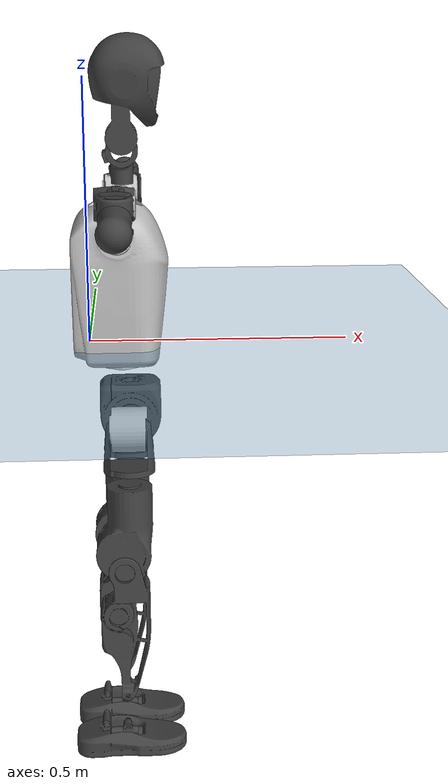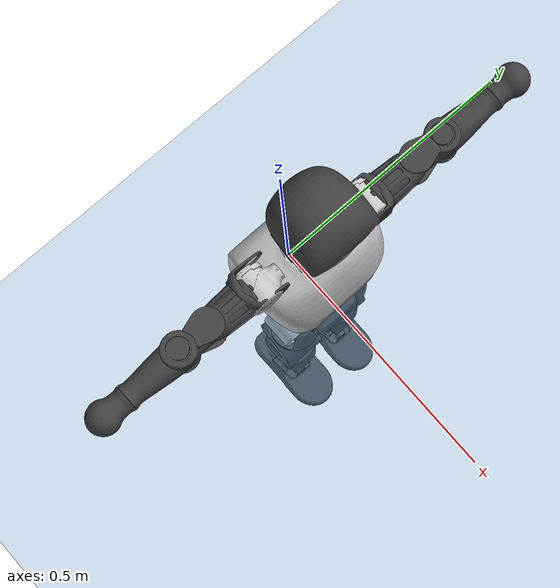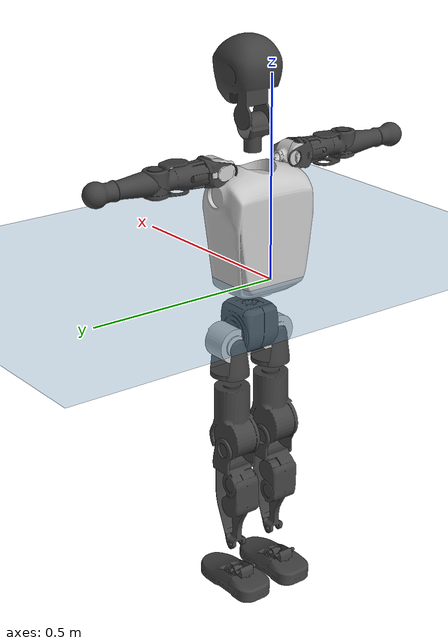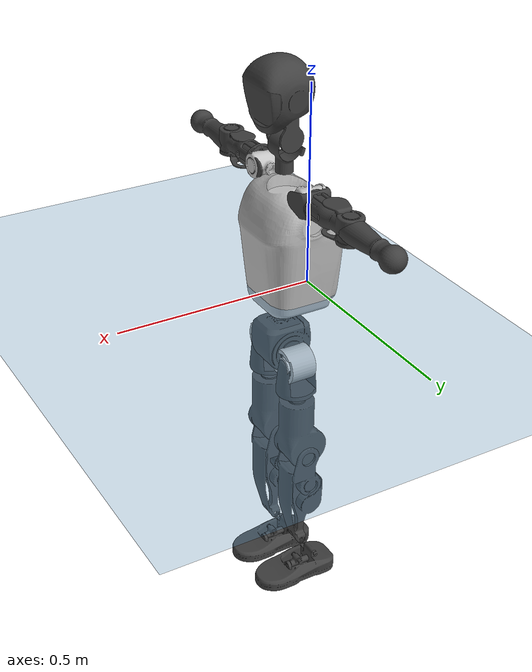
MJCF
<mujoco model="T1">
  <compiler angle="radian" assetdir="assets" balanceinertia="true" inertiafromgeom="false"/>

  <option timestep="0.005" density="1.2" viscosity="2e-05"/>

  <size nkey="1"/>

  <visual>
    <quality shadowsize="8192"/>
    <map shadowclip="0.5"/>
  </visual>

  <default>
    <default class="/">
      <joint armature="0.01" damping="0.01" frictionloss="0.1"/>
      <geom contype="0" conaffinity="0" group="1" solref="-1000 -80"/>
      <site size="0.01 0.005 0.005" group="5"/>
      <general forcelimited="true" biastype="affine" gainprm="25" biasprm="0 -25 -0.6"/>
      <default class="t1">
        <geom rgba="0.25 0.25 0.25 1"/>
        <default class="visual">
          <geom type="mesh" group="2"/>
        </default>
        <default class="collision">
          <geom group="3"/>
        </default>
        <default class="foot">
          <geom size="0.1115 0.05 0.015" type="box" condim="6" group="4" priority="1" solimp="0.015 1 0.015"/>
        </default>
        <default class="reward_collision_sphere">
          <geom group="5" rgba="1 0 0 1"/>
        </default>
      </default>
    </default>
  </default>

  <asset>
    <texture type="skybox" colorspace="auto" name="//unnamed_texture_0" builtin="gradient" rgb1="0.95 0.95 0.95" rgb2="0.95 0.95 0.95" width="100" height="600"/>
    <texture type="2d" colorspace="auto" name="texplane" builtin="checker" rgb1="0.345 0.575 0.748" rgb2="0.345 0.575 0.748" markrgb="1 1 1" width="512" height="512"/>
    <material name="MatPlane" class="/" texture="texplane" texuniform="true" texrepeat="2 2" specular="0.9"/>
    <mesh name="Trunk" class="/" file="Trunk.stl"/>
    <mesh name="H1" class="/" file="H1.stl"/>
    <mesh name="H2" class="/" file="H2.stl"/>
    <mesh name="AL1" class="/" file="AL1.stl"/>
    <mesh name="AL2" class="/" file="AL2.stl"/>
    <mesh name="AL3" class="/" file="AL3.stl"/>
    <mesh name="left_hand_link" class="/" file="left_hand_link.stl"/>
    <mesh name="AR1" class="/" file="AR1.stl"/>
    <mesh name="AR2" class="/" file="AR2.stl"/>
    <mesh name="AR3" class="/" file="AR3.stl"/>
    <mesh name="right_hand_link" class="/" file="right_hand_link.stl"/>
    <mesh name="Waist" class="/" file="Waist.stl"/>
    <mesh name="Hip_Pitch_Left" class="/" file="Hip_Pitch_Left.stl"/>
    <mesh name="Hip_Roll_Left" class="/" file="Hip_Roll_Left.stl"/>
    <mesh name="Hip_Yaw_Left" class="/" file="Hip_Yaw_Left.stl"/>
    <mesh name="Shank_Left" class="/" file="Shank_Left.stl"/>
    <mesh name="Ankle_Cross_Left" class="/" file="Ankle_Cross_Left.stl"/>
    <mesh name="left_foot_link" class="/" file="left_foot_link.stl"/>
    <mesh name="Hip_Pitch_Right" class="/" file="Hip_Pitch_Right.stl"/>
    <mesh name="Hip_Roll_Right" class="/" file="Hip_Roll_Right.stl"/>
    <mesh name="Hip_Yaw_Right" class="/" file="Hip_Yaw_Right.stl"/>
    <mesh name="Shank_Right" class="/" file="Shank_Right.stl"/>
    <mesh name="Ankle_Cross_Right" class="/" file="Ankle_Cross_Right.stl"/>
    <mesh name="right_foot_link" class="/" file="right_foot_link.stl"/>
  </asset>

  <worldbody>
    <geom name="floor" class="/" size="100 100 0.125" type="plane" group="0" material="MatPlane"/>
    <light name="toplight_shadow" class="/" pos="0 0 5" dir="0.0990148 0.0990148 -0.990148" type="directional" ambient="0.04 0.04 0.04" diffuse="0.55 0.55 0.55" specular="0.12 0.12 0.12"/>
    <light name="toplight_fill" class="/" pos="0 0 5" dir="0.0990148 0.0990148 -0.990148" type="directional" castshadow="false" ambient="0.04 0.04 0.04" diffuse="0.3 0.3 0.3" specular="0.08 0.08 0.08"/>
    <body name="trunk" childclass="t1" pos="-4.20182e-05 0.00232229 -0.0026524" quat="1 -7.28371e-05 0.000332223 0.000160708">
      <inertial pos="0.0568207 0.00104269 0.134842" quat="0.999924 0.00223154 -0.0117218 -0.00320209" mass="11.2619" diaginertia="0.143419 0.00586326 0.173703"/>
      <joint name="//unnamed_joint_0" type="free" armature="0" damping="0" frictionloss="0"/>
      <geom name="//unnamed_geom_1" class="visual" rgba="0.76 0.76 0.76 1" mesh="Trunk"/>
      <geom name="//unnamed_geom_2" class="collision" size="0.0740782 0.098771 0.148156" pos="0.0659278 0 0.151774" type="box"/>
      <geom name="//unnamed_geom_3" class="reward_collision_sphere" size="0.113587" pos="0.0659278 0 0.126479"/>
      <geom name="//unnamed_geom_4" class="reward_collision_sphere" size="0.0148156" pos="0.0659278 0.0509614 0"/>
      <geom name="//unnamed_geom_5" class="reward_collision_sphere" size="0.0148156" pos="0.0659278 -0.0509614 0"/>
      <geom name="//unnamed_geom_6" class="reward_collision_sphere" size="0.0148156" pos="0.0659278 0.0641514 0.227662"/>
      <geom name="//unnamed_geom_7" class="reward_collision_sphere" size="0.0148156" pos="0.0659278 -0.0641514 0.227662"/>
      <site name="imu" pos="-0.000378053 -0.020693 -0.00441506" size="0.0098771"/>
      <camera name="track" pos="0 -1.19909 0" quat="0.707107 0.707107 0 0" mode="trackcom"/>
      <camera name="ego_camera" pos="0.134053 0 0.53121" quat="-0.5 -0.5 0.5 0.5"/>
      <body name="H1" pos="0.0689009 0.000223708 0.305797" quat="0.999998 0.00160025 0.00104929 -0.000338556">
        <inertial pos="-0.00134842 -0.00417261 0.0733851" quat="0.764803 -0.0119054 0.0092658 0.644088" mass="0.441837" diaginertia="0.000379175 1.69638e-05 0.000463215"/>
        <joint name="AAHead_yaw" pos="0 0 0" axis="-0.00582889 0.00465553 0.999972" range="-1.55241 1.45385" armature="0.00918825" damping="0.0147245" frictionloss="0.104862"/>
        <geom name="//unnamed_geom_8" class="visual" mesh="H1"/>
        <body name="H2" pos="-0.000270339 0.0013456 0.0855099" quat="0.999994 0.00140243 -3.25204e-05 0.00314506">
          <inertial pos="0.00749652 -0.00114477 0.122142" quat="0.988602 0.106047 -0.0693433 -0.0813112" mass="0.607751" diaginertia="0.00323467 0.000142924 0.00581107"/>
          <joint name="Head_pitch" pos="0 0 0" axis="-0.00676172 -0.999923 0.0104384" stiffness="0.00433218" range="-1.17754 0.357991" armature="0.0103576" damping="0.00853566" frictionloss="0.102956"/>
          <geom name="//unnamed_geom_9" class="visual" mesh="H2"/>
          <geom name="//unnamed_geom_10" class="collision" size="0.0790168" pos="0.010988 0 0.139127"/>
          <geom name="//unnamed_geom_11" class="reward_collision_sphere" size="0.0888939" pos="0.0219759 0 0.126479"/>
        </body>
      </body>
      <body name="AL1" pos="0.06587 0.0645746 0.278617" quat="0.999999 -0.000205246 0.00127885 -4.91674e-06">
        <inertial pos="0.000702027 0.0275503 0.000163298" quat="0.523426 0.494736 -0.495948 0.485074" mass="0.538235" diaginertia="0.00224739 0.000103643 0.000957296"/>
        <joint name="Left_Shoulder_Pitch" pos="0 0 0" axis="0.00164289 0.999998 -0.000877775" stiffness="0.00103907" range="-3.41434 1.20953" armature="0.0108712" damping="0.00849698" frictionloss="0.0966807"/>
        <geom name="//unnamed_geom_12" class="visual" rgba="0.76 0.76 0.76 1" mesh="AL1"/>
        <body name="AL2" pos="0.00234627 0.0285963 -0.000452464" quat="0.999997 -0.00108632 -0.0020793 -7.99601e-05">
          <inertial pos="-0.002054 0.0223866 0.000199455" quat="0.486485 0.512725 -0.488052 0.512104" mass="0.1606" diaginertia="0.000673781 2.75417e-05 0.000621311"/>
          <joint name="Left_Shoulder_Roll" pos="0 0 0" axis="-0.999931 0.0116912 0.00147663" range="-1.56783 1.69552" armature="0.00921558" damping="0" frictionloss="0.0875639"/>
          <geom name="//unnamed_geom_13" class="visual" mesh="AL2"/>
          <body name="AL3" pos="0.00175612 0.0355603 -0.000311038" quat="0.999998 0.000321275 -0.00109933 -0.00177749">
            <inertial pos="-0.00531532 0.0534356 -0.000134723" quat="0.716613 0.69684 -0.0182105 0.0233976" mass="0.906493" diaginertia="0.0184942 0.000830649 0.001884"/>
            <joint name="Left_Elbow_Pitch" pos="0 0 0" axis="0.00108214 -0.999945 -0.0104581" range="-2.3058 2.14792" armature="0.00822628" damping="0.0101185" frictionloss="0.0686734"/>
            <geom name="//unnamed_geom_14" class="visual" mesh="AL3"/>
            <geom name="//unnamed_geom_15" class="collision" size="0.0296313 0.0740782" pos="0 0.0299773 0" quat="0.707105 0.707108 0 0" type="cylinder"/>
            <geom name="//unnamed_geom_16" class="reward_collision_sphere" size="0.0355576"/>
            <body name="left_hand_link" pos="0.00123632 0.0890521 0.00270448" quat="0.999996 -0.00290159 -0.000312212 -9.88965e-05">
              <inertial pos="-0.00250899 0.0634807 0.00208829" quat="0.70531 0.708831 -0.00338734 0.00921735" mass="0.313008" diaginertia="0.0120711 0.000602309 0.000724127"/>
              <joint name="Left_Elbow_Yaw" pos="0 0 0" axis="0.00312749 0.0182626 0.999828" stiffness="0.00295939" range="-2.44075 -0.119499" armature="0.0113553" damping="0.0251915" frictionloss="0.0979129"/>
              <geom name="//unnamed_geom_17" class="visual" mesh="left_hand_link"/>
              <geom name="//unnamed_geom_18" class="collision" size="0.0296313 0.0864246" pos="0 0.077941 0" quat="0.707105 0.707108 0 0" type="cylinder"/>
              <geom name="//unnamed_geom_19" class="reward_collision_sphere" size="0.0493855"/>
              <geom name="//unnamed_geom_20" class="reward_collision_sphere" size="0.0345698" pos="0 0.06595 0"/>
              <geom name="//unnamed_geom_21" class="reward_collision_sphere" size="0.0345698" pos="0 0.128902 0"/>
            </body>
          </body>
        </body>
      </body>
      <body name="AR1" pos="0.0605095 -0.0664592 0.281746" quat="1 -3.69056e-05 0.000196822 4.81036e-05">
        <inertial pos="-0.00168665 -0.0231135 0.00104813" quat="0.500416 0.492823 -0.503148 0.503539" mass="0.507193" diaginertia="0.00216133 0.000100122 0.00093365"/>
        <joint name="Right_Shoulder_Pitch" pos="0 0 0" axis="0.0301808 -0.999493 0.0101255" range="-1.22928 3.20732" armature="0.00880971" damping="0.00845346" frictionloss="0.12599"/>
        <geom name="//unnamed_geom_22" class="visual" rgba="0.76 0.76 0.76 1" mesh="AR1"/>
        <body name="AR2" pos="-0.00661113 -0.0232029 0.00183341" quat="1 1.08383e-05 1.65172e-05 9.96504e-06">
          <inertial pos="0.00174999 -0.0233622 0.00335009" quat="0.516686 0.487975 -0.506245 0.488501" mass="0.134983" diaginertia="0.000604311 2.51009e-05 0.000523985"/>
          <joint name="Right_Shoulder_Roll" pos="0 0 0" axis="-0.999849 0.0128708 0.0116755" stiffness="0.0150032" range="-1.73822 1.52294" armature="0.00870565" damping="0.0203126" frictionloss="0.0824918"/>
          <geom name="//unnamed_geom_23" class="visual" mesh="AR2"/>
          <body name="AR3" pos="0.0038801 -0.0341258 -0.000373912" quat="1 -0.000106852 0.000138934 1.97863e-05">
            <inertial pos="0.000282037 -0.0540592 0.00207637" quat="0.708343 0.705864 0.00214885 -0.00140676" mass="0.861028" diaginertia="0.0187772 0.000908999 0.00183648"/>
            <joint name="Right_Elbow_Pitch" pos="0 0 0" axis="-0.00613167 0.999969 -0.00484438" stiffness="0.0358872" range="-2.21265 2.34504" armature="0.00899326" damping="0" frictionloss="0.102083"/>
            <geom name="//unnamed_geom_24" class="visual" mesh="AR3"/>
            <geom name="//unnamed_geom_25" class="collision" size="0.0296313 0.0740782" pos="0 -0.0299773 0" quat="0.707105 0.707108 0 0" type="cylinder"/>
            <geom name="//unnamed_geom_26" class="reward_collision_sphere" size="0.0355576"/>
            <body name="right_hand_link" pos="-0.000816421 -0.0880067 -0.00526258" quat="1 4.71184e-07 6.22578e-05 0.000138235">
              <inertial pos="-0.00248791 -0.0654783 0.00656247" quat="0.707209 0.706973 -0.00468953 0.00478218" mass="0.345135" diaginertia="0.0136705 0.000621466 0.000712134"/>
              <joint name="Right_Elbow_Yaw" pos="0 0 0" axis="-0.0078729 -0.0056099 0.999953" range="0.0216748 2.35967" armature="0.00880236" damping="0.00364477" frictionloss="0.0885156"/>
              <geom name="//unnamed_geom_27" class="visual" mesh="right_hand_link"/>
              <geom name="//unnamed_geom_28" class="collision" size="0.0296313 0.0864246" pos="0 -0.077941 0" quat="0.707105 0.707108 0 0" type="cylinder"/>
              <geom name="//unnamed_geom_29" class="reward_collision_sphere" size="0.0493855"/>
              <geom name="//unnamed_geom_30" class="reward_collision_sphere" size="0.0345698" pos="0 -0.06595 0"/>
              <geom name="//unnamed_geom_31" class="reward_collision_sphere" size="0.0345698" pos="0 -0.128902 0"/>
            </body>
          </body>
        </body>
      </body>
      <body name="Waist" pos="0.0761001 0.00369229 -0.14373" quat="0.999999 -0.000745947 -0.00010735 0.00108201">
        <inertial pos="0.00560859 0.00272831 0.0118759" quat="0.983541 0.00060935 -0.180668 0.00233896" mass="2.61443" diaginertia="0.00907406 0.000445623 0.0164305"/>
        <joint name="Waist" pos="0 0 0" axis="0.00608391 0.00107136 0.999981" range="-1.58242 1.55705" armature="0.0107641" damping="0.00317658" frictionloss="0.125023"/>
        <geom name="//unnamed_geom_32" class="visual" mesh="Waist"/>
        <body name="Hip_Pitch_Left" pos="0.00136803 0.068416 -0.00318871" quat="0.999999 -0.000334191 0.00110554 -0.00110773">
          <inertial pos="0.00254887 -0.00682134 -0.0221076" quat="0.97516 0.221001 0.0147338 0.00187103" mass="0.98774" diaginertia="0.00280496 0.000104262 0.00403538"/>
          <joint name="Left_Hip_Pitch" pos="0 0 0" axis="-0.0104098 0.999912 -0.00827039" stiffness="0.0255989" range="-1.85393 1.60363" armature="0.00895768" damping="0.0188573" frictionloss="0.103871"/>
          <geom name="//unnamed_geom_33" class="visual" rgba="0.76 0.76 0.76 1" mesh="Hip_Pitch_Left"/>
          <body name="Hip_Roll_Left" pos="-0.00443488 -0.00277075 -0.0262212" quat="0.999994 -0.00254973 -0.00149641 0.0017042">
            <inertial pos="0.00607365 0.0032018 -0.0660209" quat="0.727103 0.00295184 -0.0166472 0.68632" mass="0.389718" diaginertia="0.00300446 0.0001245 0.00168051"/>
            <joint name="Left_Hip_Roll" pos="0 0 0" axis="-0.999423 0.0155125 0.030206" range="-1.52056 0.104421" armature="0.00782438" damping="0.0196638" frictionloss="0.0890099"/>
            <geom name="//unnamed_geom_34" class="visual" mesh="Hip_Roll_Left"/>
            <geom name="//unnamed_geom_35" class="reward_collision_sphere" size="0.054324"/>
            <body name="Hip_Yaw_Left" pos="-0.00726329 -0.00225863 -0.107471" quat="0.999997 0.00145769 -0.00215898 0.000123522">
              <inertial pos="-0.00528805 -0.00321492 -0.112706" quat="0.693305 -0.0432764 -0.0260866 0.71887" mass="1.99093" diaginertia="0.0410726 0.00190558 0.00789288"/>
              <joint name="Left_Hip_Yaw" pos="0 0 0" axis="-8.09852e-05 -2.13742e-05 -1" range="-0.967069 1.11459" armature="0.0109499" damping="0" frictionloss="0.0996317"/>
              <geom name="//unnamed_geom_36" class="visual" mesh="Hip_Yaw_Left"/>
              <geom name="//unnamed_geom_37" class="collision" size="0.0493855 0.0790168" type="cylinder"/>
              <body name="Shank_Left" pos="-0.014254 -0.00105197 -0.163745" quat="1 -0.000434121 0.000824242 0.000132852">
                <inertial pos="-0.00997694 0.00423082 -0.155521" quat="0.99707 -0.0030056 -0.0341048 0.0684011" mass="1.70637" diaginertia="0.0559239 0.00280232 0.00635264"/>
                <joint name="Left_Knee_Pitch" pos="0 0 0" axis="-0.00219995 0.999917 0.0126585" range="-0.0115993 2.35246" armature="0.0101167" damping="0.00463232" frictionloss="0.109792"/>
                <geom name="//unnamed_geom_38" class="visual" mesh="Shank_Left"/>
                <geom name="//unnamed_geom_39" class="collision" size="0.0493855 0.0740782" pos="0 0 -0.151774" type="cylinder"/>
                <geom name="//unnamed_geom_40" class="reward_collision_sphere" size="0.0642011"/>
                <body name="Ankle_Cross_Left" pos="0.00121582 0.00186499 -0.359682" quat="1 -0.000107717 0.000108462 5.79291e-05">
                  <inertial pos="-0.00628577 0.00163701 -0.00983498" quat="0.445475 0.550564 0.550936 0.441476" mass="0.0651625" diaginertia="4.57982e-05 1.93625e-06 3.60722e-05"/>
                  <joint name="Left_Ankle_Pitch" pos="0 0 0" axis="-0.000662968 0.999999 0.00159698" range="-0.90455 0.379603" armature="0.010584" damping="0.00768396" frictionloss="0.109236"/>
                  <geom name="//unnamed_geom_41" class="visual" mesh="Ankle_Cross_Left"/>
                  <body name="left_foot_link" pos="0.000726237 -0.000255847 -0.0138636" quat="1 0.000782881 -0.000416799 -0.000370484">
                    <inertial pos="0.000959909 -0.00308941 -0.0121234" quat="-0.000889019 0.615665 -0.000643488 0.788007" mass="0.717019" diaginertia="0.00403435 0.000187925 0.00726197"/>
                    <joint name="Left_Ankle_Roll" pos="0 0 0" axis="-0.999989 -0.00440942 -0.00179502" stiffness="0.000825495" range="-0.471585 0.333653" armature="0.00703" damping="0.00979676" frictionloss="0.105254"/>
                    <geom name="//unnamed_geom_42" class="visual" mesh="left_foot_link"/>
                    <geom name="left_foot" class="foot" size="0.096744 0.0555373 0.0139328" pos="0.010988 0 -0.0189718"/>
                    <geom name="//unnamed_geom_44" class="reward_collision_sphere" size="0.0513609" pos="0.010988 0 -0.0189718"/>
                    <geom name="//unnamed_geom_45" class="reward_collision_sphere" size="0.0296313" pos="0.104386 -0.0137896 -0.0189718"/>
                    <geom name="//unnamed_geom_46" class="reward_collision_sphere" size="0.0296313" pos="-0.0769158 -0.0137896 -0.0189718"/>
                    <site name="left_foot" class="foot" pos="0.010988 0 -0.0189718" size="0.0098771"/>
                  </body>
                </body>
              </body>
            </body>
          </body>
        </body>
        <body name="Hip_Pitch_Right" pos="-0.00368387 -0.0631771 0.00289859" quat="0.999999 -0.00145885 0.000356794 0.000521471">
          <inertial pos="0.00482816 0.00640376 -0.0229662" quat="0.97323 -0.22944 0.0131977 -0.00239897" mass="0.971054" diaginertia="0.00288271 0.000114067 0.00402816"/>
          <joint name="Right_Hip_Pitch" pos="0 0 0" axis="0.00185217 -0.99995 -0.00978498" range="-1.52524 1.81157" armature="0.00639946" damping="0.0073045" frictionloss="0.0984452"/>
          <geom name="//unnamed_geom_47" class="visual" rgba="0.76 0.76 0.76 1" mesh="Hip_Pitch_Right"/>
          <body name="Hip_Roll_Right" pos="0.00128138 0.000724831 -0.0285061" quat="0.999999 -0.000583816 -0.00097808 -0.000809306">
            <inertial pos="0.0019981 0.00537528 -0.0654848" quat="0.712312 0.00058788 -0.0262374 0.701372" mass="0.415674" diaginertia="0.00312738 0.00012981 0.00181625"/>
            <joint name="Right_Hip_Roll" pos="0 0 0" axis="-0.999817 -0.0190145 -0.00219044" range="-0.241635 1.58072" armature="0.00971224" damping="0.017889" frictionloss="0.112564"/>
            <geom name="//unnamed_geom_48" class="visual" mesh="Hip_Roll_Right"/>
            <geom name="//unnamed_geom_49" class="reward_collision_sphere" size="0.054324"/>
            <body name="Hip_Yaw_Right" pos="-0.00321672 -0.000626825 -0.107029" quat="0.999999 8.41537e-05 0.000653869 0.00103515">
              <inertial pos="-0.00822949 0.00667952 -0.112454" quat="0.714593 -0.030559 -0.027734 0.698323" mass="2.2562" diaginertia="0.04517 0.00215112 0.00891449"/>
              <joint name="Right_Hip_Yaw" pos="0 0 0" axis="0.00054233 0.00330805 -0.999994" range="-0.99546 0.93259" armature="0.00885183" damping="0.01391" frictionloss="0.10027"/>
              <geom name="//unnamed_geom_50" class="visual" mesh="Hip_Yaw_Right"/>
              <geom name="//unnamed_geom_51" class="collision" size="0.0493855 0.0790168" type="cylinder"/>
              <body name="Shank_Right" pos="-0.0127601 -0.000274453 -0.168844" quat="1 -0.000603979 -0.000513211 9.64832e-05">
                <inertial pos="-0.00700565 0.000707923 -0.155729" quat="0.999532 -0.00429606 -0.0229268 -0.0197855" mass="1.77528" diaginertia="0.0639373 0.00277363 0.0065936"/>
                <joint name="Right_Knee_Pitch" pos="0 0 0" axis="-0.0199212 -0.999658 0.0169407" stiffness="0.0203631" range="-2.34149 0.0106149" armature="0.0100492" damping="0.015074" frictionloss="0.103351"/>
                <geom name="//unnamed_geom_52" class="visual" mesh="Shank_Right"/>
                <geom name="//unnamed_geom_53" class="collision" size="0.0493855 0.0740782" pos="0 0 -0.151774" type="cylinder"/>
                <geom name="//unnamed_geom_54" class="reward_collision_sphere" size="0.0642011"/>
                <body name="Ankle_Cross_Right" pos="-0.00173501 -0.00198874 -0.355056" quat="0.999999 0.000637804 -0.00145706 0.000471594">
                  <inertial pos="-0.00621882 0.000515911 -0.00486484" quat="0.450234 0.563223 0.551812 0.419014" mass="0.0735215" diaginertia="5.30161e-05 2.01831e-06 4.14493e-05"/>
                  <joint name="Right_Ankle_Pitch" pos="0 0 0" axis="0.00731702 -0.999846 0.0159388" stiffness="0.0168729" range="-0.39024 0.891437" armature="0.00941929" damping="0.0176008" frictionloss="0.114197"/>
                  <geom name="//unnamed_geom_55" class="visual" mesh="Ankle_Cross_Right"/>
                  <body name="right_foot_link" pos="-0.00178882 0.000714317 -0.0164906" quat="1 0.000375798 -0.000268614 -7.17968e-05">
                    <inertial pos="0.00663327 0.00211708 -0.0124287" quat="-0.00724589 0.625411 0.00422182 0.780251" mass="0.655912" diaginertia="0.00421858 0.000180125 0.00706799"/>
                    <joint name="Right_Ankle_Roll" pos="0 0 0" axis="-0.999999 -0.00164997 -7.319e-05" range="-0.484085 0.47769" armature="0.00991601" damping="0" frictionloss="0.103687"/>
                    <geom name="//unnamed_geom_56" class="visual" mesh="right_foot_link"/>
                    <geom name="right_foot" class="foot" size="0.0983866 0.0471735 0.0147724" pos="0.010988 0 -0.0189718"/>
                    <geom name="//unnamed_geom_58" class="reward_collision_sphere" size="0.0395084"/>
                    <geom name="//unnamed_geom_59" class="reward_collision_sphere" size="0.0296313" pos="0.010988 0 -0.0189718"/>
                    <geom name="//unnamed_geom_60" class="reward_collision_sphere" size="0.0296313" pos="0.104386 0.0137896 -0.0189718"/>
                    <geom name="//unnamed_geom_61" class="reward_collision_sphere" size="0.0296313" pos="-0.0769158 0.0137896 -0.0189718"/>
                    <site name="right_foot" class="foot" pos="0.010988 0 -0.0189718" size="0.0098771"/>
                  </body>
                </body>
              </body>
            </body>
          </body>
        </body>
      </body>
    </body>
  </worldbody>

  <contact>
    <pair class="/" geom1="floor" geom2="left_foot" name="//unnamed_contact_0"/>
    <pair class="/" geom1="floor" geom2="right_foot" name="//unnamed_contact_1"/>
  </contact>

  <actuator>
    <general name="AAHead_yaw" class="/" joint="AAHead_yaw" forcerange="-6.44378 6.44378" gainprm="25.8111" biasprm="0 -25.8111 -0.602494"/>
    <general name="Head_pitch" class="/" joint="Head_pitch" forcerange="-6.32741 6.32741" gainprm="25.8111" biasprm="0 -25.8111 -0.602494"/>
    <general name="Left_Shoulder_Pitch" class="/" joint="Left_Shoulder_Pitch" forcerange="-17.0544 17.0544" gainprm="25.8111" biasprm="0 -25.8111 -0.602494"/>
    <general name="Left_Shoulder_Roll" class="/" joint="Left_Shoulder_Roll" forcerange="-18.9905 18.9905" gainprm="25.8111" biasprm="0 -25.8111 -0.602494"/>
    <general name="Left_Elbow_Pitch" class="/" joint="Left_Elbow_Pitch" forcerange="-14.5416 14.5416" gainprm="25.8111" biasprm="0 -25.8111 -0.602494"/>
    <general name="Left_Elbow_Yaw" class="/" joint="Left_Elbow_Yaw" forcerange="-18.821 18.821" gainprm="25.8111" biasprm="0 -25.8111 -0.602494"/>
    <general name="Right_Shoulder_Pitch" class="/" joint="Right_Shoulder_Pitch" forcerange="-21.7177 21.7177" gainprm="25.8111" biasprm="0 -25.8111 -0.602494"/>
    <general name="Right_Shoulder_Roll" class="/" joint="Right_Shoulder_Roll" forcerange="-17.2276 17.2276" gainprm="25.8111" biasprm="0 -25.8111 -0.602494"/>
    <general name="Right_Elbow_Pitch" class="/" joint="Right_Elbow_Pitch" forcerange="-14.3244 14.3244" gainprm="25.8111" biasprm="0 -25.8111 -0.602494"/>
    <general name="Right_Elbow_Yaw" class="/" joint="Right_Elbow_Yaw" forcerange="-18.3585 18.3585" gainprm="25.8111" biasprm="0 -25.8111 -0.602494"/>
    <general name="Waist" class="/" joint="Waist" forcerange="-27.6656 27.6656" gainprm="25.8111" biasprm="0 -25.8111 -0.602494"/>
    <general name="Left_Hip_Pitch" class="/" joint="Left_Hip_Pitch" forcerange="-42.2927 42.2927" gainprm="25.8111" biasprm="0 -25.8111 -0.602494"/>
    <general name="Left_Hip_Roll" class="/" joint="Left_Hip_Roll" forcerange="-24.6838 24.6838" gainprm="25.8111" biasprm="0 -25.8111 -0.602494"/>
    <general name="Left_Hip_Yaw" class="/" joint="Left_Hip_Yaw" forcerange="-36.8402 36.8402" gainprm="25.8111" biasprm="0 -25.8111 -0.602494"/>
    <general name="Left_Knee_Pitch" class="/" joint="Left_Knee_Pitch" forcerange="-52.9976 52.9976" gainprm="25.8111" biasprm="0 -25.8111 -0.602494"/>
    <general name="Left_Ankle_Pitch" class="/" joint="Left_Ankle_Pitch" forcerange="-25.2905 25.2905" gainprm="25.8111" biasprm="0 -25.8111 -0.602494"/>
    <general name="Left_Ankle_Roll" class="/" joint="Left_Ankle_Roll" forcerange="-13.8364 13.8364" gainprm="25.8111" biasprm="0 -25.8111 -0.602494"/>
    <general name="Right_Hip_Pitch" class="/" joint="Right_Hip_Pitch" forcerange="-43.5319 43.5319" gainprm="25.8111" biasprm="0 -25.8111 -0.602494"/>
    <general name="Right_Hip_Roll" class="/" joint="Right_Hip_Roll" forcerange="-30.2972 30.2972" gainprm="25.8111" biasprm="0 -25.8111 -0.602494"/>
    <general name="Right_Hip_Yaw" class="/" joint="Right_Hip_Yaw" forcerange="-30.2688 30.2688" gainprm="25.8111" biasprm="0 -25.8111 -0.602494"/>
    <general name="Right_Knee_Pitch" class="/" joint="Right_Knee_Pitch" forcerange="-50.9073 50.9073" gainprm="25.8111" biasprm="0 -25.8111 -0.602494"/>
    <general name="Right_Ankle_Pitch" class="/" joint="Right_Ankle_Pitch" forcerange="-19.0656 19.0656" gainprm="25.8111" biasprm="0 -25.8111 -0.602494"/>
    <general name="Right_Ankle_Roll" class="/" joint="Right_Ankle_Roll" forcerange="-17.736 17.736" gainprm="25.8111" biasprm="0 -25.8111 -0.602494"/>
  </actuator>

  <sensor>
    <gyro site="imu" name="imu_angular_velocity"/>
    <velocimeter site="imu" name="imu_linear_velocity"/>
    <framelinvel objtype="site" objname="left_foot" name="left_foot_global_linear_velocity"/>
    <framelinvel objtype="site" objname="right_foot" name="right_foot_global_linear_velocity"/>
  </sensor>

  <keyframe>
    <key name="home" qpos="0 0 0.6385 1 0 0 0 0 0 0 1.4 0 -0.4 0 -1.4 0 0.4 0 -0.4 0 0 0.8 -0.4 0 0.4 0 0 -0.8 0.4 0"/>
  </keyframe>
</mujoco>
